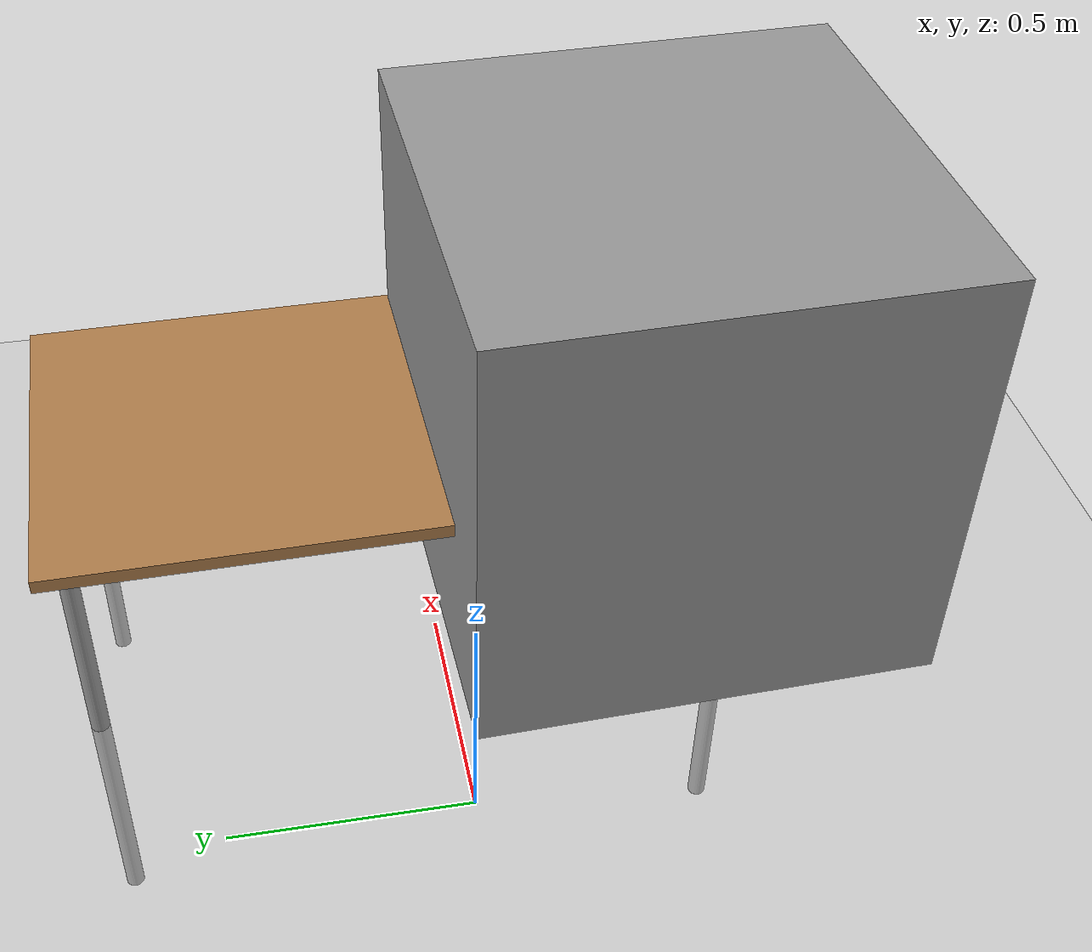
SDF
<sdf version="1.4">
 <world name="default">
  <model name="ground_plane">
   <static>1</static>
   <link name="link">
    <collision name="collision">
     <geometry><plane><normal>0 0 1</normal><size>100 100</size></plane></geometry>
     <surface><friction><ode><mu>100</mu><mu2>50</mu2></ode></friction></surface>
    </collision>
    <visual name="visual">
     <cast_shadows>0</cast_shadows>
     <geometry><plane><normal>0 0 1</normal><size>100 100</size></plane></geometry>
     <material>
      <script><uri>file://media/materials/scripts/gazebo.material</uri><name>Gazebo/Grey</name></script>
     </material>
    </visual>
    <velocity_decay><linear>0</linear><angular>0</angular></velocity_decay>
   </link>
  </model>
  <light name="sun" type="directional">
   <pose>0 0 10 0 -0 0</pose>
   <diffuse>0.8 0.8 0.8 1</diffuse>
   <specular>0.2 0.2 0.2 1</specular>
   <attenuation>
    <range>1000</range>
    <constant>0.9</constant>
    <linear>0.01</linear>
    <quadratic>0.001</quadratic>
   </attenuation>
   <direction>-0.5 0.1 -0.9</direction>
  </light>
  <physics type="ode">
   <real_time_update_rate>1000</real_time_update_rate>
   <gravity>0 0 -9.81</gravity>
   <max_step_size>0.001</max_step_size>
   <real_time_factor>1</real_time_factor>
  </physics>
  <scene><ambient>0.4 0.4 0.4 1</ambient><background>0.7 0.7 0.7 1</background><shadows>1</shadows></scene>
  <spherical_coordinates>
   <surface_model>EARTH_WGS84</surface_model>
   <latitude_deg>0</latitude_deg>
   <longitude_deg>0</longitude_deg>
   <elevation>0</elevation>
   <heading_deg>0</heading_deg>
  </spherical_coordinates>
  <model name="table">
   <static>1</static>
   <link name="link">
    <collision name="surface">
     <pose>0 0 1 0 -0 0</pose>
     <geometry><box><size>1.5 0.8 0.03</size></box></geometry>
     <surface><friction><ode><mu>0.6</mu><mu2>0.6</mu2></ode></friction></surface>
    </collision>
    <visual name="visual1">
     <pose>0 0 1 0 -0 0</pose>
     <geometry><box><size>1.5 0.8 0.03</size></box></geometry>
     <material>
      <script><uri>file://media/materials/scripts/gazebo.material</uri><name>Gazebo/Wood</name></script>
     </material>
    </visual>
    <collision name="front_left_leg">
     <pose>0.68 0.38 0.5 0 -0 0</pose>
     <geometry><cylinder><radius>0.02</radius><length>1</length></cylinder></geometry>
    </collision>
    <visual name="front_left_leg">
     <pose>0.68 0.38 0.5 0 -0 0</pose>
     <geometry><cylinder><radius>0.02</radius><length>1</length></cylinder></geometry>
     <material>
      <script><uri>file://media/materials/scripts/gazebo.material</uri><name>Gazebo/Grey</name></script>
     </material>
    </visual>
    <collision name="front_right_leg">
     <pose>0.68 -0.38 0.5 0 -0 0</pose>
     <geometry><cylinder><radius>0.02</radius><length>1</length></cylinder></geometry>
    </collision>
    <visual name="front_right_leg">
     <pose>0.68 -0.38 0.5 0 -0 0</pose>
     <geometry><cylinder><radius>0.02</radius><length>1</length></cylinder></geometry>
     <material>
      <script><uri>file://media/materials/scripts/gazebo.material</uri><name>Gazebo/Grey</name></script>
     </material>
    </visual>
    <collision name="back_right_leg">
     <pose>-0.68 -0.38 0.5 0 -0 0</pose>
     <geometry><cylinder><radius>0.02</radius><length>1</length></cylinder></geometry>
    </collision>
    <visual name="back_right_leg">
     <pose>-0.68 -0.38 0.5 0 -0 0</pose>
     <geometry><cylinder><radius>0.02</radius><length>1</length></cylinder></geometry>
     <material>
      <script><uri>file://media/materials/scripts/gazebo.material</uri><name>Gazebo/Grey</name></script>
     </material>
    </visual>
    <collision name="back_left_leg">
     <pose>-0.68 0.38 0.5 0 -0 0</pose>
     <geometry><cylinder><radius>0.02</radius><length>1</length></cylinder></geometry>
    </collision>
    <visual name="back_left_leg">
     <pose>-0.68 0.38 0.5 0 -0 0</pose>
     <geometry><cylinder><radius>0.02</radius><length>1</length></cylinder></geometry>
     <material>
      <script><uri>file://media/materials/scripts/gazebo.material</uri><name>Gazebo/Grey</name></script>
     </material>
    </visual>
    <velocity_decay><linear>0</linear><angular>0</angular></velocity_decay>
   </link>
   <pose>0.732413 0.06996 -0.558835 0 -0 1.58771</pose>
  </model>
  <model name="unit_box_1">
   <pose>0.641196 -0.507966 0.543327 -0.002254 0.003306 0.029232</pose>
   <link name="link">
    <inertial>
     <mass>1</mass>
     <inertia><ixx>1</ixx><ixy>0</ixy><ixz>0</ixz><iyy>1</iyy><iyz>0</iyz><izz>1</izz></inertia>
    </inertial>
    <collision name="collision"><geometry><box><size>0.048314 0.037928 0.17408</size></box></geometry></collision>
    <visual name="visual">
     <geometry><box><size>1 1 1</size></box></geometry>
     <material>
      <script><uri>file://media/materials/scripts/gazebo.material</uri><name>Gazebo/Grey</name></script>
     </material>
    </visual>
    <velocity_decay><linear>0</linear><angular>0</angular></velocity_decay>
   </link>
   <static>0</static>
  </model>
  <model name="wooden_peg">
   <link name="link">
    <pose>0 0 0.04 0 -0 0</pose>
    <inertial>
     <mass>0.0175</mass>
     <inertia>
      <ixx>9.74923e-06</ixx>
      <ixy>0</ixy>
      <ixz>0</ixz>
      <iyy>9.74923e-06</iyy>
      <iyz>0</iyz>
      <izz>8.31797e-07</izz>
     </inertia>
    </inertial>
    <collision name="collision">
     <geometry><cylinder><radius>0.00975</radius><length>0.08</length></cylinder></geometry>
    </collision>
    <visual name="visual">
     <geometry><cylinder><radius>0.00975</radius><length>0.08</length></cylinder></geometry>
     <material>
      <script><uri>file://media/materials/scripts/gazebo.material</uri><name>Gazebo/Wood</name></script>
     </material>
    </visual>
    <velocity_decay><linear>0</linear><angular>0</angular></velocity_decay>
   </link>
   <pose>0.62526 -0.357213 0.45616 -0.000461 -0.000176 0.000449</pose>
   <static>0</static>
  </model>
 </world>
</sdf>
